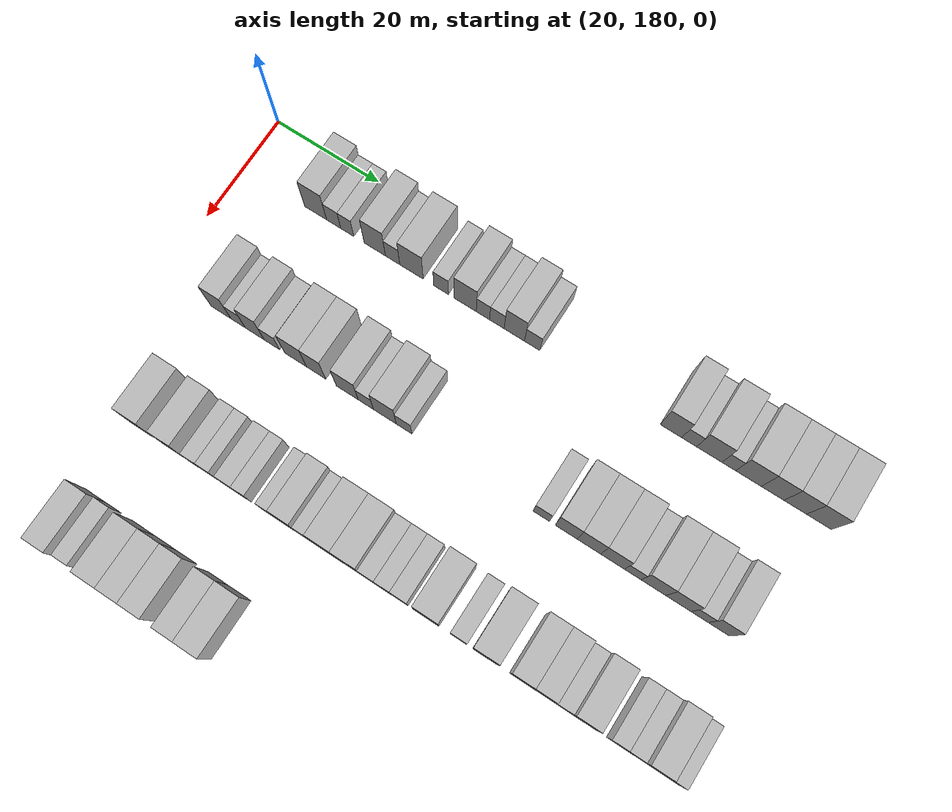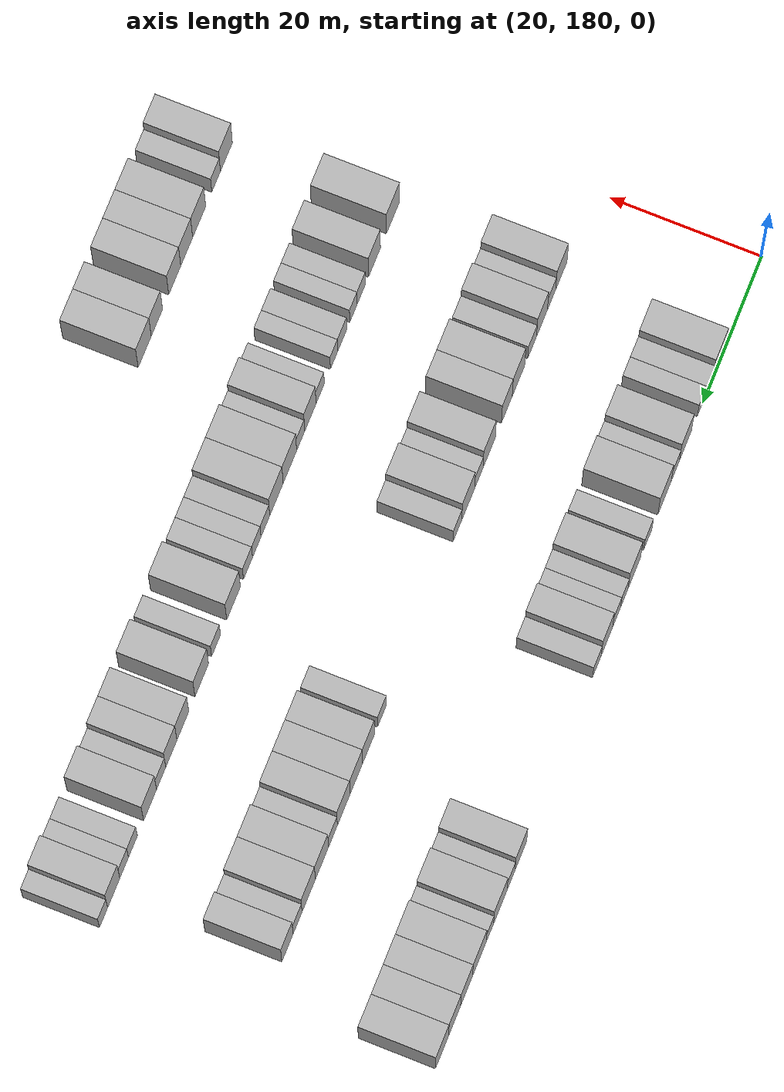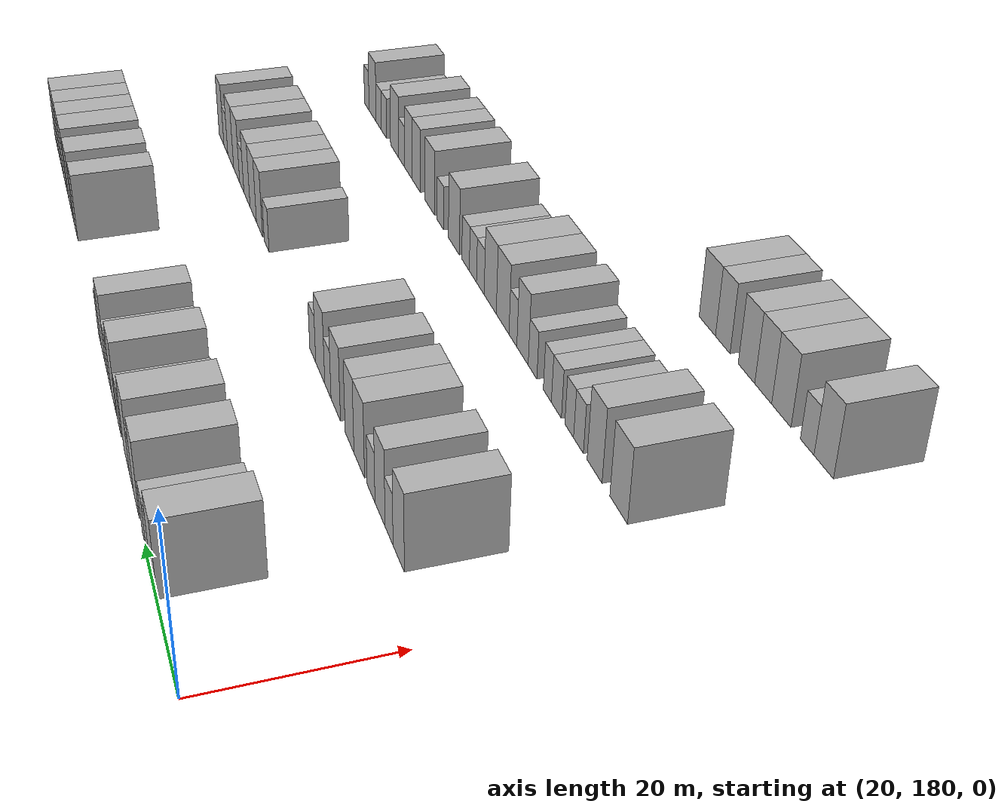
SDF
<sdf version="1.6">
 <world name="default">
  <model name="building_142">
   <static>1</static>
   <pose>25.0000 194.4342 0 0.000000 0.000000 0.000000</pose>
   <link name="link">
    <pose>0 0 4.50 0 0 0</pose>
    <collision name="collision"><geometry><box><size>10.0000 4.2887 9.0000</size></box></geometry></collision>
    <visual name="visual">
     <cast_shadows>0</cast_shadows>
     <geometry><box><size>10.0000 4.2887 9.0000</size></box></geometry>
     <material>
      <script>
       <uri>model://HANNAS_wall/materials/scripts</uri>
       <uri>model://HANNAS_wall/materials/textures</uri>
       <name>vrc/HANNAS_wall</name>
      </script>
     </material>
    </visual>
   </link>
  </model>
  <model name="building_143">
   <static>1</static>
   <pose>25.0000 197.9572 0 0.000000 0.000000 0.000000</pose>
   <link name="link">
    <pose>0 0 3.00 0 0 0</pose>
    <collision name="collision"><geometry><box><size>10.0000 2.7574 6.0000</size></box></geometry></collision>
    <visual name="visual">
     <cast_shadows>0</cast_shadows>
     <geometry><box><size>10.0000 2.7574 6.0000</size></box></geometry>
     <material>
      <script>
       <uri>model://HANNAS_wall/materials/scripts</uri>
       <uri>model://HANNAS_wall/materials/textures</uri>
       <name>vrc/HANNAS_wall</name>
      </script>
     </material>
    </visual>
   </link>
  </model>
  <model name="building_144">
   <static>1</static>
   <pose>25.0000 200.6099 0 0.000000 0.000000 0.000000</pose>
   <link name="link">
    <pose>0 0 3.00 0 0 0</pose>
    <collision name="collision"><geometry><box><size>10.0000 2.5479 6.0000</size></box></geometry></collision>
    <visual name="visual">
     <cast_shadows>0</cast_shadows>
     <geometry><box><size>10.0000 2.5479 6.0000</size></box></geometry>
     <material>
      <script>
       <uri>model://HANNAS_wall/materials/scripts</uri>
       <uri>model://HANNAS_wall/materials/textures</uri>
       <name>vrc/HANNAS_wall</name>
      </script>
     </material>
    </visual>
   </link>
  </model>
  <model name="building_145">
   <static>1</static>
   <pose>25.0000 205.9290 0 0.000000 0.000000 0.000000</pose>
   <link name="link">
    <pose>0 0 4.50 0 0 0</pose>
    <collision name="collision"><geometry><box><size>10.0000 4.0903 9.0000</size></box></geometry></collision>
    <visual name="visual">
     <cast_shadows>0</cast_shadows>
     <geometry><box><size>10.0000 4.0903 9.0000</size></box></geometry>
     <material>
      <script>
       <uri>model://HANNAS_wall/materials/scripts</uri>
       <uri>model://HANNAS_wall/materials/textures</uri>
       <name>vrc/HANNAS_wall</name>
      </script>
     </material>
    </visual>
   </link>
  </model>
  <model name="building_146">
   <static>1</static>
   <pose>25.0000 209.3490 0 0.000000 0.000000 0.000000</pose>
   <link name="link">
    <pose>0 0 3.00 0 0 0</pose>
    <collision name="collision"><geometry><box><size>10.0000 2.7497 6.0000</size></box></geometry></collision>
    <visual name="visual">
     <cast_shadows>0</cast_shadows>
     <geometry><box><size>10.0000 2.7497 6.0000</size></box></geometry>
     <material>
      <script>
       <uri>model://HANNAS_wall/materials/scripts</uri>
       <uri>model://HANNAS_wall/materials/textures</uri>
       <name>vrc/HANNAS_wall</name>
      </script>
     </material>
    </visual>
   </link>
  </model>
  <model name="building_147">
   <static>1</static>
   <pose>25.0000 212.9604 0 0.000000 0.000000 0.000000</pose>
   <link name="link">
    <pose>0 0 4.50 0 0 0</pose>
    <collision name="collision"><geometry><box><size>10.0000 4.4733 9.0000</size></box></geometry></collision>
    <visual name="visual">
     <cast_shadows>0</cast_shadows>
     <geometry><box><size>10.0000 4.4733 9.0000</size></box></geometry>
     <material>
      <script>
       <uri>model://HANNAS_wall/materials/scripts</uri>
       <uri>model://HANNAS_wall/materials/textures</uri>
       <name>vrc/HANNAS_wall</name>
      </script>
     </material>
    </visual>
   </link>
  </model>
  <model name="building_148">
   <static>1</static>
   <pose>25.0000 218.5999 0 0.000000 0.000000 0.000000</pose>
   <link name="link">
    <pose>0 0 3.00 0 0 0</pose>
    <collision name="collision"><geometry><box><size>10.0000 2.8057 6.0000</size></box></geometry></collision>
    <visual name="visual">
     <cast_shadows>0</cast_shadows>
     <geometry><box><size>10.0000 2.8057 6.0000</size></box></geometry>
     <material>
      <script>
       <uri>model://HANNAS_wall/materials/scripts</uri>
       <uri>model://HANNAS_wall/materials/textures</uri>
       <name>vrc/HANNAS_wall</name>
      </script>
     </material>
    </visual>
   </link>
  </model>
  <model name="building_149">
   <static>1</static>
   <pose>25.0000 223.1088 0 0.000000 0.000000 0.000000</pose>
   <link name="link">
    <pose>0 0 4.50 0 0 0</pose>
    <collision name="collision"><geometry><box><size>10.0000 4.2120 9.0000</size></box></geometry></collision>
    <visual name="visual">
     <cast_shadows>0</cast_shadows>
     <geometry><box><size>10.0000 4.2120 9.0000</size></box></geometry>
     <material>
      <script>
       <uri>model://HANNAS_wall/materials/scripts</uri>
       <uri>model://HANNAS_wall/materials/textures</uri>
       <name>vrc/HANNAS_wall</name>
      </script>
     </material>
    </visual>
   </link>
  </model>
  <model name="building_150">
   <static>1</static>
   <pose>25.0000 226.4575 0 0.000000 0.000000 0.000000</pose>
   <link name="link">
    <pose>0 0 3.00 0 0 0</pose>
    <collision name="collision"><geometry><box><size>10.0000 2.4855 6.0000</size></box></geometry></collision>
    <visual name="visual">
     <cast_shadows>0</cast_shadows>
     <geometry><box><size>10.0000 2.4855 6.0000</size></box></geometry>
     <material>
      <script>
       <uri>model://HANNAS_wall/materials/scripts</uri>
       <uri>model://HANNAS_wall/materials/textures</uri>
       <name>vrc/HANNAS_wall</name>
      </script>
     </material>
    </visual>
   </link>
  </model>
  <model name="building_151">
   <static>1</static>
   <pose>25.0000 229.0565 0 0.000000 0.000000 0.000000</pose>
   <link name="link">
    <pose>0 0 3.00 0 0 0</pose>
    <collision name="collision"><geometry><box><size>10.0000 2.7127 6.0000</size></box></geometry></collision>
    <visual name="visual">
     <cast_shadows>0</cast_shadows>
     <geometry><box><size>10.0000 2.7127 6.0000</size></box></geometry>
     <material>
      <script>
       <uri>model://HANNAS_wall/materials/scripts</uri>
       <uri>model://HANNAS_wall/materials/textures</uri>
       <name>vrc/HANNAS_wall</name>
      </script>
     </material>
    </visual>
   </link>
  </model>
  <model name="building_152">
   <static>1</static>
   <pose>25.0000 232.3058 0 0.000000 0.000000 0.000000</pose>
   <link name="link">
    <pose>0 0 4.50 0 0 0</pose>
    <collision name="collision"><geometry><box><size>10.0000 3.7859 9.0000</size></box></geometry></collision>
    <visual name="visual">
     <cast_shadows>0</cast_shadows>
     <geometry><box><size>10.0000 3.7859 9.0000</size></box></geometry>
     <material>
      <script>
       <uri>model://HANNAS_wall/materials/scripts</uri>
       <uri>model://HANNAS_wall/materials/textures</uri>
       <name>vrc/HANNAS_wall</name>
      </script>
     </material>
    </visual>
   </link>
  </model>
  <model name="building_153">
   <static>1</static>
   <pose>25.0000 235.6213 0 0.000000 0.000000 0.000000</pose>
   <link name="link">
    <pose>0 0 3.00 0 0 0</pose>
    <collision name="collision"><geometry><box><size>10.0000 2.8450 6.0000</size></box></geometry></collision>
    <visual name="visual">
     <cast_shadows>0</cast_shadows>
     <geometry><box><size>10.0000 2.8450 6.0000</size></box></geometry>
     <material>
      <script>
       <uri>model://HANNAS_wall/materials/scripts</uri>
       <uri>model://HANNAS_wall/materials/textures</uri>
       <name>vrc/HANNAS_wall</name>
      </script>
     </material>
    </visual>
   </link>
  </model>
  <model name="building_154">
   <static>1</static>
   <pose>25.0000 260.7895 0 0.000000 0.000000 0.000000</pose>
   <link name="link">
    <pose>0 0 4.50 0 0 0</pose>
    <collision name="collision"><geometry><box><size>10.0000 3.8305 9.0000</size></box></geometry></collision>
    <visual name="visual">
     <cast_shadows>0</cast_shadows>
     <geometry><box><size>10.0000 3.8305 9.0000</size></box></geometry>
     <material>
      <script>
       <uri>model://HANNAS_wall/materials/scripts</uri>
       <uri>model://HANNAS_wall/materials/textures</uri>
       <name>vrc/HANNAS_wall</name>
      </script>
     </material>
    </visual>
   </link>
  </model>
  <model name="building_155">
   <static>1</static>
   <pose>25.0000 264.0180 0 0.000000 0.000000 0.000000</pose>
   <link name="link">
    <pose>0 0 3.00 0 0 0</pose>
    <collision name="collision"><geometry><box><size>10.0000 2.6265 6.0000</size></box></geometry></collision>
    <visual name="visual">
     <cast_shadows>0</cast_shadows>
     <geometry><box><size>10.0000 2.6265 6.0000</size></box></geometry>
     <material>
      <script>
       <uri>model://HANNAS_wall/materials/scripts</uri>
       <uri>model://HANNAS_wall/materials/textures</uri>
       <name>vrc/HANNAS_wall</name>
      </script>
     </material>
    </visual>
   </link>
  </model>
  <model name="building_156">
   <static>1</static>
   <pose>25.0000 267.5448 0 0.000000 0.000000 0.000000</pose>
   <link name="link">
    <pose>0 0 4.50 0 0 0</pose>
    <collision name="collision"><geometry><box><size>10.0000 4.4271 9.0000</size></box></geometry></collision>
    <visual name="visual">
     <cast_shadows>0</cast_shadows>
     <geometry><box><size>10.0000 4.4271 9.0000</size></box></geometry>
     <material>
      <script>
       <uri>model://HANNAS_wall/materials/scripts</uri>
       <uri>model://HANNAS_wall/materials/textures</uri>
       <name>vrc/HANNAS_wall</name>
      </script>
     </material>
    </visual>
   </link>
  </model>
  <model name="building_157">
   <static>1</static>
   <pose>25.0000 270.9626 0 0.000000 0.000000 0.000000</pose>
   <link name="link">
    <pose>0 0 3.00 0 0 0</pose>
    <collision name="collision"><geometry><box><size>10.0000 2.4084 6.0000</size></box></geometry></collision>
    <visual name="visual">
     <cast_shadows>0</cast_shadows>
     <geometry><box><size>10.0000 2.4084 6.0000</size></box></geometry>
     <material>
      <script>
       <uri>model://HANNAS_wall/materials/scripts</uri>
       <uri>model://HANNAS_wall/materials/textures</uri>
       <name>vrc/HANNAS_wall</name>
      </script>
     </material>
    </visual>
   </link>
  </model>
  <model name="building_158">
   <static>1</static>
   <pose>25.0000 274.3946 0 0.000000 0.000000 0.000000</pose>
   <link name="link">
    <pose>0 0 4.50 0 0 0</pose>
    <collision name="collision"><geometry><box><size>10.0000 4.4556 9.0000</size></box></geometry></collision>
    <visual name="visual">
     <cast_shadows>0</cast_shadows>
     <geometry><box><size>10.0000 4.4556 9.0000</size></box></geometry>
     <material>
      <script>
       <uri>model://HANNAS_wall/materials/scripts</uri>
       <uri>model://HANNAS_wall/materials/textures</uri>
       <name>vrc/HANNAS_wall</name>
      </script>
     </material>
    </visual>
   </link>
  </model>
  <model name="building_159">
   <static>1</static>
   <pose>25.0000 278.5839 0 0.000000 0.000000 0.000000</pose>
   <link name="link">
    <pose>0 0 4.50 0 0 0</pose>
    <collision name="collision"><geometry><box><size>10.0000 3.9231 9.0000</size></box></geometry></collision>
    <visual name="visual">
     <cast_shadows>0</cast_shadows>
     <geometry><box><size>10.0000 3.9231 9.0000</size></box></geometry>
     <material>
      <script>
       <uri>model://HANNAS_wall/materials/scripts</uri>
       <uri>model://HANNAS_wall/materials/textures</uri>
       <name>vrc/HANNAS_wall</name>
      </script>
     </material>
    </visual>
   </link>
  </model>
  <model name="building_160">
   <static>1</static>
   <pose>25.0000 282.4805 0 0.000000 0.000000 0.000000</pose>
   <link name="link">
    <pose>0 0 4.50 0 0 0</pose>
    <collision name="collision"><geometry><box><size>10.0000 3.8700 9.0000</size></box></geometry></collision>
    <visual name="visual">
     <cast_shadows>0</cast_shadows>
     <geometry><box><size>10.0000 3.8700 9.0000</size></box></geometry>
     <material>
      <script>
       <uri>model://HANNAS_wall/materials/scripts</uri>
       <uri>model://HANNAS_wall/materials/textures</uri>
       <name>vrc/HANNAS_wall</name>
      </script>
     </material>
    </visual>
   </link>
  </model>
  <model name="building_161">
   <static>1</static>
   <pose>25.0000 286.5533 0 0.000000 0.000000 0.000000</pose>
   <link name="link">
    <pose>0 0 4.50 0 0 0</pose>
    <collision name="collision"><geometry><box><size>10.0000 4.2758 9.0000</size></box></geometry></collision>
    <visual name="visual">
     <cast_shadows>0</cast_shadows>
     <geometry><box><size>10.0000 4.2758 9.0000</size></box></geometry>
     <material>
      <script>
       <uri>model://HANNAS_wall/materials/scripts</uri>
       <uri>model://HANNAS_wall/materials/textures</uri>
       <name>vrc/HANNAS_wall</name>
      </script>
     </material>
    </visual>
   </link>
  </model>
  <model name="building_330">
   <static>1</static>
   <pose>47.0000 191.5045 0 0.000000 0.000000 0.000000</pose>
   <link name="link">
    <pose>0 0 4.50 0 0 0</pose>
    <collision name="collision"><geometry><box><size>10.0000 3.8035 9.0000</size></box></geometry></collision>
    <visual name="visual">
     <cast_shadows>0</cast_shadows>
     <geometry><box><size>10.0000 3.8035 9.0000</size></box></geometry>
     <material>
      <script>
       <uri>model://HANNAS_wall/materials/scripts</uri>
       <uri>model://HANNAS_wall/materials/textures</uri>
       <name>vrc/HANNAS_wall</name>
      </script>
     </material>
    </visual>
   </link>
  </model>
  <model name="building_331">
   <static>1</static>
   <pose>47.0000 194.8027 0 0.000000 0.000000 0.000000</pose>
   <link name="link">
    <pose>0 0 3.00 0 0 0</pose>
    <collision name="collision"><geometry><box><size>10.0000 2.7929 6.0000</size></box></geometry></collision>
    <visual name="visual">
     <cast_shadows>0</cast_shadows>
     <geometry><box><size>10.0000 2.7929 6.0000</size></box></geometry>
     <material>
      <script>
       <uri>model://HANNAS_wall/materials/scripts</uri>
       <uri>model://HANNAS_wall/materials/textures</uri>
       <name>vrc/HANNAS_wall</name>
      </script>
     </material>
    </visual>
   </link>
  </model>
  <model name="building_332">
   <static>1</static>
   <pose>47.0000 198.0237 0 0.000000 0.000000 0.000000</pose>
   <link name="link">
    <pose>0 0 4.50 0 0 0</pose>
    <collision name="collision"><geometry><box><size>10.0000 3.6490 9.0000</size></box></geometry></collision>
    <visual name="visual">
     <cast_shadows>0</cast_shadows>
     <geometry><box><size>10.0000 3.6490 9.0000</size></box></geometry>
     <material>
      <script>
       <uri>model://HANNAS_wall/materials/scripts</uri>
       <uri>model://HANNAS_wall/materials/textures</uri>
       <name>vrc/HANNAS_wall</name>
      </script>
     </material>
    </visual>
   </link>
  </model>
  <model name="building_333">
   <static>1</static>
   <pose>47.0000 201.3187 0 0.000000 0.000000 0.000000</pose>
   <link name="link">
    <pose>0 0 3.00 0 0 0</pose>
    <collision name="collision"><geometry><box><size>10.0000 2.9411 6.0000</size></box></geometry></collision>
    <visual name="visual">
     <cast_shadows>0</cast_shadows>
     <geometry><box><size>10.0000 2.9411 6.0000</size></box></geometry>
     <material>
      <script>
       <uri>model://HANNAS_wall/materials/scripts</uri>
       <uri>model://HANNAS_wall/materials/textures</uri>
       <name>vrc/HANNAS_wall</name>
      </script>
     </material>
    </visual>
   </link>
  </model>
  <model name="building_334">
   <static>1</static>
   <pose>47.0000 205.8698 0 0.000000 0.000000 0.000000</pose>
   <link name="link">
    <pose>0 0 4.50 0 0 0</pose>
    <collision name="collision"><geometry><box><size>10.0000 4.1611 9.0000</size></box></geometry></collision>
    <visual name="visual">
     <cast_shadows>0</cast_shadows>
     <geometry><box><size>10.0000 4.1611 9.0000</size></box></geometry>
     <material>
      <script>
       <uri>model://HANNAS_wall/materials/scripts</uri>
       <uri>model://HANNAS_wall/materials/textures</uri>
       <name>vrc/HANNAS_wall</name>
      </script>
     </material>
    </visual>
   </link>
  </model>
  <model name="building_335">
   <static>1</static>
   <pose>47.0000 209.7536 0 0.000000 0.000000 0.000000</pose>
   <link name="link">
    <pose>0 0 4.50 0 0 0</pose>
    <collision name="collision"><geometry><box><size>10.0000 3.6065 9.0000</size></box></geometry></collision>
    <visual name="visual">
     <cast_shadows>0</cast_shadows>
     <geometry><box><size>10.0000 3.6065 9.0000</size></box></geometry>
     <material>
      <script>
       <uri>model://HANNAS_wall/materials/scripts</uri>
       <uri>model://HANNAS_wall/materials/textures</uri>
       <name>vrc/HANNAS_wall</name>
      </script>
     </material>
    </visual>
   </link>
  </model>
  <model name="building_336">
   <static>1</static>
   <pose>47.0000 215.6096 0 0.000000 0.000000 0.000000</pose>
   <link name="link">
    <pose>0 0 4.50 0 0 0</pose>
    <collision name="collision"><geometry><box><size>10.0000 4.1054 9.0000</size></box></geometry></collision>
    <visual name="visual">
     <cast_shadows>0</cast_shadows>
     <geometry><box><size>10.0000 4.1054 9.0000</size></box></geometry>
     <material>
      <script>
       <uri>model://HANNAS_wall/materials/scripts</uri>
       <uri>model://HANNAS_wall/materials/textures</uri>
       <name>vrc/HANNAS_wall</name>
      </script>
     </material>
    </visual>
   </link>
  </model>
  <model name="building_337">
   <static>1</static>
   <pose>47.0000 219.0672 0 0.000000 0.000000 0.000000</pose>
   <link name="link">
    <pose>0 0 3.00 0 0 0</pose>
    <collision name="collision"><geometry><box><size>10.0000 2.8098 6.0000</size></box></geometry></collision>
    <visual name="visual">
     <cast_shadows>0</cast_shadows>
     <geometry><box><size>10.0000 2.8098 6.0000</size></box></geometry>
     <material>
      <script>
       <uri>model://HANNAS_wall/materials/scripts</uri>
       <uri>model://HANNAS_wall/materials/textures</uri>
       <name>vrc/HANNAS_wall</name>
      </script>
     </material>
    </visual>
   </link>
  </model>
  <model name="building_338">
   <static>1</static>
   <pose>47.0000 222.5880 0 0.000000 0.000000 0.000000</pose>
   <link name="link">
    <pose>0 0 4.50 0 0 0</pose>
    <collision name="collision"><geometry><box><size>10.0000 4.2319 9.0000</size></box></geometry></collision>
    <visual name="visual">
     <cast_shadows>0</cast_shadows>
     <geometry><box><size>10.0000 4.2319 9.0000</size></box></geometry>
     <material>
      <script>
       <uri>model://HANNAS_wall/materials/scripts</uri>
       <uri>model://HANNAS_wall/materials/textures</uri>
       <name>vrc/HANNAS_wall</name>
      </script>
     </material>
    </visual>
   </link>
  </model>
  <model name="building_339">
   <static>1</static>
   <pose>47.0000 226.1510 0 0.000000 0.000000 0.000000</pose>
   <link name="link">
    <pose>0 0 3.00 0 0 0</pose>
    <collision name="collision"><geometry><box><size>10.0000 2.8941 6.0000</size></box></geometry></collision>
    <visual name="visual">
     <cast_shadows>0</cast_shadows>
     <geometry><box><size>10.0000 2.8941 6.0000</size></box></geometry>
     <material>
      <script>
       <uri>model://HANNAS_wall/materials/scripts</uri>
       <uri>model://HANNAS_wall/materials/textures</uri>
       <name>vrc/HANNAS_wall</name>
      </script>
     </material>
    </visual>
   </link>
  </model>
  <model name="building_340">
   <static>1</static>
   <pose>47.0000 250.9813 0 0.000000 0.000000 0.000000</pose>
   <link name="link">
    <pose>0 0 3.00 0 0 0</pose>
    <collision name="collision"><geometry><box><size>10.0000 2.9222 6.0000</size></box></geometry></collision>
    <visual name="visual">
     <cast_shadows>0</cast_shadows>
     <geometry><box><size>10.0000 2.9222 6.0000</size></box></geometry>
     <material>
      <script>
       <uri>model://HANNAS_wall/materials/scripts</uri>
       <uri>model://HANNAS_wall/materials/textures</uri>
       <name>vrc/HANNAS_wall</name>
      </script>
     </material>
    </visual>
   </link>
  </model>
  <model name="building_341">
   <static>1</static>
   <pose>47.0000 255.3674 0 0.000000 0.000000 0.000000</pose>
   <link name="link">
    <pose>0 0 4.50 0 0 0</pose>
    <collision name="collision"><geometry><box><size>10.0000 3.8501 9.0000</size></box></geometry></collision>
    <visual name="visual">
     <cast_shadows>0</cast_shadows>
     <geometry><box><size>10.0000 3.8501 9.0000</size></box></geometry>
     <material>
      <script>
       <uri>model://HANNAS_wall/materials/scripts</uri>
       <uri>model://HANNAS_wall/materials/textures</uri>
       <name>vrc/HANNAS_wall</name>
      </script>
     </material>
    </visual>
   </link>
  </model>
  <model name="building_342">
   <static>1</static>
   <pose>47.0000 259.3530 0 0.000000 0.000000 0.000000</pose>
   <link name="link">
    <pose>0 0 4.50 0 0 0</pose>
    <collision name="collision"><geometry><box><size>10.0000 4.1212 9.0000</size></box></geometry></collision>
    <visual name="visual">
     <cast_shadows>0</cast_shadows>
     <geometry><box><size>10.0000 4.1212 9.0000</size></box></geometry>
     <material>
      <script>
       <uri>model://HANNAS_wall/materials/scripts</uri>
       <uri>model://HANNAS_wall/materials/textures</uri>
       <name>vrc/HANNAS_wall</name>
      </script>
     </material>
    </visual>
   </link>
  </model>
  <model name="building_343">
   <static>1</static>
   <pose>47.0000 263.4711 0 0.000000 0.000000 0.000000</pose>
   <link name="link">
    <pose>0 0 4.50 0 0 0</pose>
    <collision name="collision"><geometry><box><size>10.0000 4.1149 9.0000</size></box></geometry></collision>
    <visual name="visual">
     <cast_shadows>0</cast_shadows>
     <geometry><box><size>10.0000 4.1149 9.0000</size></box></geometry>
     <material>
      <script>
       <uri>model://HANNAS_wall/materials/scripts</uri>
       <uri>model://HANNAS_wall/materials/textures</uri>
       <name>vrc/HANNAS_wall</name>
      </script>
     </material>
    </visual>
   </link>
  </model>
  <model name="building_344">
   <static>1</static>
   <pose>47.0000 266.9787 0 0.000000 0.000000 0.000000</pose>
   <link name="link">
    <pose>0 0 3.00 0 0 0</pose>
    <collision name="collision"><geometry><box><size>10.0000 2.9005 6.0000</size></box></geometry></collision>
    <visual name="visual">
     <cast_shadows>0</cast_shadows>
     <geometry><box><size>10.0000 2.9005 6.0000</size></box></geometry>
     <material>
      <script>
       <uri>model://HANNAS_wall/materials/scripts</uri>
       <uri>model://HANNAS_wall/materials/textures</uri>
       <name>vrc/HANNAS_wall</name>
      </script>
     </material>
    </visual>
   </link>
  </model>
  <model name="building_345">
   <static>1</static>
   <pose>47.0000 270.5539 0 0.000000 0.000000 0.000000</pose>
   <link name="link">
    <pose>0 0 4.50 0 0 0</pose>
    <collision name="collision"><geometry><box><size>10.0000 4.2500 9.0000</size></box></geometry></collision>
    <visual name="visual">
     <cast_shadows>0</cast_shadows>
     <geometry><box><size>10.0000 4.2500 9.0000</size></box></geometry>
     <material>
      <script>
       <uri>model://HANNAS_wall/materials/scripts</uri>
       <uri>model://HANNAS_wall/materials/textures</uri>
       <name>vrc/HANNAS_wall</name>
      </script>
     </material>
    </visual>
   </link>
  </model>
  <model name="building_346">
   <static>1</static>
   <pose>47.0000 274.8305 0 0.000000 0.000000 0.000000</pose>
   <link name="link">
    <pose>0 0 4.50 0 0 0</pose>
    <collision name="collision"><geometry><box><size>10.0000 4.3032 9.0000</size></box></geometry></collision>
    <visual name="visual">
     <cast_shadows>0</cast_shadows>
     <geometry><box><size>10.0000 4.3032 9.0000</size></box></geometry>
     <material>
      <script>
       <uri>model://HANNAS_wall/materials/scripts</uri>
       <uri>model://HANNAS_wall/materials/textures</uri>
       <name>vrc/HANNAS_wall</name>
      </script>
     </material>
    </visual>
   </link>
  </model>
  <model name="building_347">
   <static>1</static>
   <pose>47.0000 278.4367 0 0.000000 0.000000 0.000000</pose>
   <link name="link">
    <pose>0 0 3.00 0 0 0</pose>
    <collision name="collision"><geometry><box><size>10.0000 2.9091 6.0000</size></box></geometry></collision>
    <visual name="visual">
     <cast_shadows>0</cast_shadows>
     <geometry><box><size>10.0000 2.9091 6.0000</size></box></geometry>
     <material>
      <script>
       <uri>model://HANNAS_wall/materials/scripts</uri>
       <uri>model://HANNAS_wall/materials/textures</uri>
       <name>vrc/HANNAS_wall</name>
      </script>
     </material>
    </visual>
   </link>
  </model>
  <model name="building_348">
   <static>1</static>
   <pose>47.0000 281.6938 0 0.000000 0.000000 0.000000</pose>
   <link name="link">
    <pose>0 0 4.50 0 0 0</pose>
    <collision name="collision"><geometry><box><size>10.0000 3.6052 9.0000</size></box></geometry></collision>
    <visual name="visual">
     <cast_shadows>0</cast_shadows>
     <geometry><box><size>10.0000 3.6052 9.0000</size></box></geometry>
     <material>
      <script>
       <uri>model://HANNAS_wall/materials/scripts</uri>
       <uri>model://HANNAS_wall/materials/textures</uri>
       <name>vrc/HANNAS_wall</name>
      </script>
     </material>
    </visual>
   </link>
  </model>
  <model name="building_516">
   <static>1</static>
   <pose>69.0000 192.2705 0 0.000000 0.000000 0.000000</pose>
   <link name="link">
    <pose>0 0 4.50 0 0 0</pose>
    <collision name="collision"><geometry><box><size>10.0000 4.3944 9.0000</size></box></geometry></collision>
    <visual name="visual">
     <cast_shadows>0</cast_shadows>
     <geometry><box><size>10.0000 4.3944 9.0000</size></box></geometry>
     <material>
      <script>
       <uri>model://HANNAS_wall/materials/scripts</uri>
       <uri>model://HANNAS_wall/materials/textures</uri>
       <name>vrc/HANNAS_wall</name>
      </script>
     </material>
    </visual>
   </link>
  </model>
  <model name="building_517">
   <static>1</static>
   <pose>69.0000 198.4491 0 0.000000 0.000000 0.000000</pose>
   <link name="link">
    <pose>0 0 4.50 0 0 0</pose>
    <collision name="collision"><geometry><box><size>10.0000 3.9629 9.0000</size></box></geometry></collision>
    <visual name="visual">
     <cast_shadows>0</cast_shadows>
     <geometry><box><size>10.0000 3.9629 9.0000</size></box></geometry>
     <material>
      <script>
       <uri>model://HANNAS_wall/materials/scripts</uri>
       <uri>model://HANNAS_wall/materials/textures</uri>
       <name>vrc/HANNAS_wall</name>
      </script>
     </material>
    </visual>
   </link>
  </model>
  <model name="building_518">
   <static>1</static>
   <pose>69.0000 202.7853 0 0.000000 0.000000 0.000000</pose>
   <link name="link">
    <pose>0 0 3.00 0 0 0</pose>
    <collision name="collision"><geometry><box><size>10.0000 2.7095 6.0000</size></box></geometry></collision>
    <visual name="visual">
     <cast_shadows>0</cast_shadows>
     <geometry><box><size>10.0000 2.7095 6.0000</size></box></geometry>
     <material>
      <script>
       <uri>model://HANNAS_wall/materials/scripts</uri>
       <uri>model://HANNAS_wall/materials/textures</uri>
       <name>vrc/HANNAS_wall</name>
      </script>
     </material>
    </visual>
   </link>
  </model>
  <model name="building_519">
   <static>1</static>
   <pose>69.0000 205.3776 0 0.000000 0.000000 0.000000</pose>
   <link name="link">
    <pose>0 0 3.00 0 0 0</pose>
    <collision name="collision"><geometry><box><size>10.0000 2.4753 6.0000</size></box></geometry></collision>
    <visual name="visual">
     <cast_shadows>0</cast_shadows>
     <geometry><box><size>10.0000 2.4753 6.0000</size></box></geometry>
     <material>
      <script>
       <uri>model://HANNAS_wall/materials/scripts</uri>
       <uri>model://HANNAS_wall/materials/textures</uri>
       <name>vrc/HANNAS_wall</name>
      </script>
     </material>
    </visual>
   </link>
  </model>
  <model name="building_520">
   <static>1</static>
   <pose>69.0000 209.0927 0 0.000000 0.000000 0.000000</pose>
   <link name="link">
    <pose>0 0 3.00 0 0 0</pose>
    <collision name="collision"><geometry><box><size>10.0000 2.9548 6.0000</size></box></geometry></collision>
    <visual name="visual">
     <cast_shadows>0</cast_shadows>
     <geometry><box><size>10.0000 2.9548 6.0000</size></box></geometry>
     <material>
      <script>
       <uri>model://HANNAS_wall/materials/scripts</uri>
       <uri>model://HANNAS_wall/materials/textures</uri>
       <name>vrc/HANNAS_wall</name>
      </script>
     </material>
    </visual>
   </link>
  </model>
  <model name="building_521">
   <static>1</static>
   <pose>69.0000 211.7875 0 0.000000 0.000000 0.000000</pose>
   <link name="link">
    <pose>0 0 3.00 0 0 0</pose>
    <collision name="collision"><geometry><box><size>10.0000 2.4348 6.0000</size></box></geometry></collision>
    <visual name="visual">
     <cast_shadows>0</cast_shadows>
     <geometry><box><size>10.0000 2.4348 6.0000</size></box></geometry>
     <material>
      <script>
       <uri>model://HANNAS_wall/materials/scripts</uri>
       <uri>model://HANNAS_wall/materials/textures</uri>
       <name>vrc/HANNAS_wall</name>
      </script>
     </material>
    </visual>
   </link>
  </model>
  <model name="building_522">
   <static>1</static>
   <pose>69.0000 216.3763 0 0.000000 0.000000 0.000000</pose>
   <link name="link">
    <pose>0 0 3.00 0 0 0</pose>
    <collision name="collision"><geometry><box><size>10.0000 2.7429 6.0000</size></box></geometry></collision>
    <visual name="visual">
     <cast_shadows>0</cast_shadows>
     <geometry><box><size>10.0000 2.7429 6.0000</size></box></geometry>
     <material>
      <script>
       <uri>model://HANNAS_wall/materials/scripts</uri>
       <uri>model://HANNAS_wall/materials/textures</uri>
       <name>vrc/HANNAS_wall</name>
      </script>
     </material>
    </visual>
   </link>
  </model>
  <model name="building_523">
   <static>1</static>
   <pose>69.0000 219.6072 0 0.000000 0.000000 0.000000</pose>
   <link name="link">
    <pose>0 0 4.50 0 0 0</pose>
    <collision name="collision"><geometry><box><size>10.0000 3.7189 9.0000</size></box></geometry></collision>
    <visual name="visual">
     <cast_shadows>0</cast_shadows>
     <geometry><box><size>10.0000 3.7189 9.0000</size></box></geometry>
     <material>
      <script>
       <uri>model://HANNAS_wall/materials/scripts</uri>
       <uri>model://HANNAS_wall/materials/textures</uri>
       <name>vrc/HANNAS_wall</name>
      </script>
     </material>
    </visual>
   </link>
  </model>
  <model name="building_524">
   <static>1</static>
   <pose>69.0000 222.7854 0 0.000000 0.000000 0.000000</pose>
   <link name="link">
    <pose>0 0 3.00 0 0 0</pose>
    <collision name="collision"><geometry><box><size>10.0000 2.6375 6.0000</size></box></geometry></collision>
    <visual name="visual">
     <cast_shadows>0</cast_shadows>
     <geometry><box><size>10.0000 2.6375 6.0000</size></box></geometry>
     <material>
      <script>
       <uri>model://HANNAS_wall/materials/scripts</uri>
       <uri>model://HANNAS_wall/materials/textures</uri>
       <name>vrc/HANNAS_wall</name>
      </script>
     </material>
    </visual>
   </link>
  </model>
  <model name="building_525">
   <static>1</static>
   <pose>69.0000 226.3155 0 0.000000 0.000000 0.000000</pose>
   <link name="link">
    <pose>0 0 4.50 0 0 0</pose>
    <collision name="collision"><geometry><box><size>10.0000 4.4226 9.0000</size></box></geometry></collision>
    <visual name="visual">
     <cast_shadows>0</cast_shadows>
     <geometry><box><size>10.0000 4.4226 9.0000</size></box></geometry>
     <material>
      <script>
       <uri>model://HANNAS_wall/materials/scripts</uri>
       <uri>model://HANNAS_wall/materials/textures</uri>
       <name>vrc/HANNAS_wall</name>
      </script>
     </material>
    </visual>
   </link>
  </model>
  <model name="building_526">
   <static>1</static>
   <pose>69.0000 230.7147 0 0.000000 0.000000 0.000000</pose>
   <link name="link">
    <pose>0 0 4.50 0 0 0</pose>
    <collision name="collision"><geometry><box><size>10.0000 4.3759 9.0000</size></box></geometry></collision>
    <visual name="visual">
     <cast_shadows>0</cast_shadows>
     <geometry><box><size>10.0000 4.3759 9.0000</size></box></geometry>
     <material>
      <script>
       <uri>model://HANNAS_wall/materials/scripts</uri>
       <uri>model://HANNAS_wall/materials/textures</uri>
       <name>vrc/HANNAS_wall</name>
      </script>
     </material>
    </visual>
   </link>
  </model>
  <model name="building_527">
   <static>1</static>
   <pose>69.0000 234.3349 0 0.000000 0.000000 0.000000</pose>
   <link name="link">
    <pose>0 0 3.00 0 0 0</pose>
    <collision name="collision"><geometry><box><size>10.0000 2.8646 6.0000</size></box></geometry></collision>
    <visual name="visual">
     <cast_shadows>0</cast_shadows>
     <geometry><box><size>10.0000 2.8646 6.0000</size></box></geometry>
     <material>
      <script>
       <uri>model://HANNAS_wall/materials/scripts</uri>
       <uri>model://HANNAS_wall/materials/textures</uri>
       <name>vrc/HANNAS_wall</name>
      </script>
     </material>
    </visual>
   </link>
  </model>
  <model name="building_528">
   <static>1</static>
   <pose>69.0000 237.1352 0 0.000000 0.000000 0.000000</pose>
   <link name="link">
    <pose>0 0 3.00 0 0 0</pose>
    <collision name="collision"><geometry><box><size>10.0000 2.7358 6.0000</size></box></geometry></collision>
    <visual name="visual">
     <cast_shadows>0</cast_shadows>
     <geometry><box><size>10.0000 2.7358 6.0000</size></box></geometry>
     <material>
      <script>
       <uri>model://HANNAS_wall/materials/scripts</uri>
       <uri>model://HANNAS_wall/materials/textures</uri>
       <name>vrc/HANNAS_wall</name>
      </script>
     </material>
    </visual>
   </link>
  </model>
  <model name="building_529">
   <static>1</static>
   <pose>69.0000 239.9780 0 0.000000 0.000000 0.000000</pose>
   <link name="link">
    <pose>0 0 3.00 0 0 0</pose>
    <collision name="collision"><geometry><box><size>10.0000 2.9500 6.0000</size></box></geometry></collision>
    <visual name="visual">
     <cast_shadows>0</cast_shadows>
     <geometry><box><size>10.0000 2.9500 6.0000</size></box></geometry>
     <material>
      <script>
       <uri>model://HANNAS_wall/materials/scripts</uri>
       <uri>model://HANNAS_wall/materials/textures</uri>
       <name>vrc/HANNAS_wall</name>
      </script>
     </material>
    </visual>
   </link>
  </model>
  <model name="building_530">
   <static>1</static>
   <pose>69.0000 244.6816 0 0.000000 0.000000 0.000000</pose>
   <link name="link">
    <pose>0 0 4.50 0 0 0</pose>
    <collision name="collision"><geometry><box><size>10.0000 4.4571 9.0000</size></box></geometry></collision>
    <visual name="visual">
     <cast_shadows>0</cast_shadows>
     <geometry><box><size>10.0000 4.4571 9.0000</size></box></geometry>
     <material>
      <script>
       <uri>model://HANNAS_wall/materials/scripts</uri>
       <uri>model://HANNAS_wall/materials/textures</uri>
       <name>vrc/HANNAS_wall</name>
      </script>
     </material>
    </visual>
   </link>
  </model>
  <model name="building_531">
   <static>1</static>
   <pose>69.0000 250.3471 0 0.000000 0.000000 0.000000</pose>
   <link name="link">
    <pose>0 0 3.00 0 0 0</pose>
    <collision name="collision"><geometry><box><size>10.0000 2.8741 6.0000</size></box></geometry></collision>
    <visual name="visual">
     <cast_shadows>0</cast_shadows>
     <geometry><box><size>10.0000 2.8741 6.0000</size></box></geometry>
     <material>
      <script>
       <uri>model://HANNAS_wall/materials/scripts</uri>
       <uri>model://HANNAS_wall/materials/textures</uri>
       <name>vrc/HANNAS_wall</name>
      </script>
     </material>
    </visual>
   </link>
  </model>
  <model name="building_532">
   <static>1</static>
   <pose>69.0000 254.9730 0 0.000000 0.000000 0.000000</pose>
   <link name="link">
    <pose>0 0 4.50 0 0 0</pose>
    <collision name="collision"><geometry><box><size>10.0000 4.3777 9.0000</size></box></geometry></collision>
    <visual name="visual">
     <cast_shadows>0</cast_shadows>
     <geometry><box><size>10.0000 4.3777 9.0000</size></box></geometry>
     <material>
      <script>
       <uri>model://HANNAS_wall/materials/scripts</uri>
       <uri>model://HANNAS_wall/materials/textures</uri>
       <name>vrc/HANNAS_wall</name>
      </script>
     </material>
    </visual>
   </link>
  </model>
  <model name="building_533">
   <static>1</static>
   <pose>69.0000 261.0660 0 0.000000 0.000000 0.000000</pose>
   <link name="link">
    <pose>0 0 4.50 0 0 0</pose>
    <collision name="collision"><geometry><box><size>10.0000 3.8082 9.0000</size></box></geometry></collision>
    <visual name="visual">
     <cast_shadows>0</cast_shadows>
     <geometry><box><size>10.0000 3.8082 9.0000</size></box></geometry>
     <material>
      <script>
       <uri>model://HANNAS_wall/materials/scripts</uri>
       <uri>model://HANNAS_wall/materials/textures</uri>
       <name>vrc/HANNAS_wall</name>
      </script>
     </material>
    </visual>
   </link>
  </model>
  <model name="building_534">
   <static>1</static>
   <pose>69.0000 264.7711 0 0.000000 0.000000 0.000000</pose>
   <link name="link">
    <pose>0 0 4.50 0 0 0</pose>
    <collision name="collision"><geometry><box><size>10.0000 3.6020 9.0000</size></box></geometry></collision>
    <visual name="visual">
     <cast_shadows>0</cast_shadows>
     <geometry><box><size>10.0000 3.6020 9.0000</size></box></geometry>
     <material>
      <script>
       <uri>model://HANNAS_wall/materials/scripts</uri>
       <uri>model://HANNAS_wall/materials/textures</uri>
       <name>vrc/HANNAS_wall</name>
      </script>
     </material>
    </visual>
   </link>
  </model>
  <model name="building_535">
   <static>1</static>
   <pose>69.0000 268.0552 0 0.000000 0.000000 0.000000</pose>
   <link name="link">
    <pose>0 0 3.00 0 0 0</pose>
    <collision name="collision"><geometry><box><size>10.0000 2.9663 6.0000</size></box></geometry></collision>
    <visual name="visual">
     <cast_shadows>0</cast_shadows>
     <geometry><box><size>10.0000 2.9663 6.0000</size></box></geometry>
     <material>
      <script>
       <uri>model://HANNAS_wall/materials/scripts</uri>
       <uri>model://HANNAS_wall/materials/textures</uri>
       <name>vrc/HANNAS_wall</name>
      </script>
     </material>
    </visual>
   </link>
  </model>
  <model name="building_536">
   <static>1</static>
   <pose>69.0000 271.5997 0 0.000000 0.000000 0.000000</pose>
   <link name="link">
    <pose>0 0 4.50 0 0 0</pose>
    <collision name="collision"><geometry><box><size>10.0000 4.1227 9.0000</size></box></geometry></collision>
    <visual name="visual">
     <cast_shadows>0</cast_shadows>
     <geometry><box><size>10.0000 4.1227 9.0000</size></box></geometry>
     <material>
      <script>
       <uri>model://HANNAS_wall/materials/scripts</uri>
       <uri>model://HANNAS_wall/materials/textures</uri>
       <name>vrc/HANNAS_wall</name>
      </script>
     </material>
    </visual>
   </link>
  </model>
  <model name="building_537">
   <static>1</static>
   <pose>69.0000 277.0917 0 0.000000 0.000000 0.000000</pose>
   <link name="link">
    <pose>0 0 3.00 0 0 0</pose>
    <collision name="collision"><geometry><box><size>10.0000 2.8612 6.0000</size></box></geometry></collision>
    <visual name="visual">
     <cast_shadows>0</cast_shadows>
     <geometry><box><size>10.0000 2.8612 6.0000</size></box></geometry>
     <material>
      <script>
       <uri>model://HANNAS_wall/materials/scripts</uri>
       <uri>model://HANNAS_wall/materials/textures</uri>
       <name>vrc/HANNAS_wall</name>
      </script>
     </material>
    </visual>
   </link>
  </model>
  <model name="building_538">
   <static>1</static>
   <pose>69.0000 279.8999 0 0.000000 0.000000 0.000000</pose>
   <link name="link">
    <pose>0 0 3.00 0 0 0</pose>
    <collision name="collision"><geometry><box><size>10.0000 2.7553 6.0000</size></box></geometry></collision>
    <visual name="visual">
     <cast_shadows>0</cast_shadows>
     <geometry><box><size>10.0000 2.7553 6.0000</size></box></geometry>
     <material>
      <script>
       <uri>model://HANNAS_wall/materials/scripts</uri>
       <uri>model://HANNAS_wall/materials/textures</uri>
       <name>vrc/HANNAS_wall</name>
      </script>
     </material>
    </visual>
   </link>
  </model>
  <model name="building_539">
   <static>1</static>
   <pose>69.0000 283.2259 0 0.000000 0.000000 0.000000</pose>
   <link name="link">
    <pose>0 0 4.50 0 0 0</pose>
    <collision name="collision"><geometry><box><size>10.0000 3.8967 9.0000</size></box></geometry></collision>
    <visual name="visual">
     <cast_shadows>0</cast_shadows>
     <geometry><box><size>10.0000 3.8967 9.0000</size></box></geometry>
     <material>
      <script>
       <uri>model://HANNAS_wall/materials/scripts</uri>
       <uri>model://HANNAS_wall/materials/textures</uri>
       <name>vrc/HANNAS_wall</name>
      </script>
     </material>
    </visual>
   </link>
  </model>
  <model name="building_540">
   <static>1</static>
   <pose>69.0000 286.4716 0 0.000000 0.000000 0.000000</pose>
   <link name="link">
    <pose>0 0 3.00 0 0 0</pose>
    <collision name="collision"><geometry><box><size>10.0000 2.5946 6.0000</size></box></geometry></collision>
    <visual name="visual">
     <cast_shadows>0</cast_shadows>
     <geometry><box><size>10.0000 2.5946 6.0000</size></box></geometry>
     <material>
      <script>
       <uri>model://HANNAS_wall/materials/scripts</uri>
       <uri>model://HANNAS_wall/materials/textures</uri>
       <name>vrc/HANNAS_wall</name>
      </script>
     </material>
    </visual>
   </link>
  </model>
  <model name="building_701">
   <static>1</static>
   <pose>91.0000 192.7153 0 0.000000 0.000000 0.000000</pose>
   <link name="link">
    <pose>0 0 4.50 0 0 0</pose>
    <collision name="collision"><geometry><box><size>10.0000 3.9268 9.0000</size></box></geometry></collision>
    <visual name="visual">
     <cast_shadows>0</cast_shadows>
     <geometry><box><size>10.0000 3.9268 9.0000</size></box></geometry>
     <material>
      <script>
       <uri>model://HANNAS_wall/materials/scripts</uri>
       <uri>model://HANNAS_wall/materials/textures</uri>
       <name>vrc/HANNAS_wall</name>
      </script>
     </material>
    </visual>
   </link>
  </model>
  <model name="building_702">
   <static>1</static>
   <pose>91.0000 196.1010 0 0.000000 0.000000 0.000000</pose>
   <link name="link">
    <pose>0 0 3.00 0 0 0</pose>
    <collision name="collision"><geometry><box><size>10.0000 2.8447 6.0000</size></box></geometry></collision>
    <visual name="visual">
     <cast_shadows>0</cast_shadows>
     <geometry><box><size>10.0000 2.8447 6.0000</size></box></geometry>
     <material>
      <script>
       <uri>model://HANNAS_wall/materials/scripts</uri>
       <uri>model://HANNAS_wall/materials/textures</uri>
       <name>vrc/HANNAS_wall</name>
      </script>
     </material>
    </visual>
   </link>
  </model>
  <model name="building_703">
   <static>1</static>
   <pose>91.0000 201.6551 0 0.000000 0.000000 0.000000</pose>
   <link name="link">
    <pose>0 0 4.50 0 0 0</pose>
    <collision name="collision"><geometry><box><size>10.0000 4.2633 9.0000</size></box></geometry></collision>
    <visual name="visual">
     <cast_shadows>0</cast_shadows>
     <geometry><box><size>10.0000 4.2633 9.0000</size></box></geometry>
     <material>
      <script>
       <uri>model://HANNAS_wall/materials/scripts</uri>
       <uri>model://HANNAS_wall/materials/textures</uri>
       <name>vrc/HANNAS_wall</name>
      </script>
     </material>
    </visual>
   </link>
  </model>
  <model name="building_704">
   <static>1</static>
   <pose>91.0000 205.7324 0 0.000000 0.000000 0.000000</pose>
   <link name="link">
    <pose>0 0 4.50 0 0 0</pose>
    <collision name="collision"><geometry><box><size>10.0000 3.8913 9.0000</size></box></geometry></collision>
    <visual name="visual">
     <cast_shadows>0</cast_shadows>
     <geometry><box><size>10.0000 3.8913 9.0000</size></box></geometry>
     <material>
      <script>
       <uri>model://HANNAS_wall/materials/scripts</uri>
       <uri>model://HANNAS_wall/materials/textures</uri>
       <name>vrc/HANNAS_wall</name>
      </script>
     </material>
    </visual>
   </link>
  </model>
  <model name="building_705">
   <static>1</static>
   <pose>91.0000 209.6476 0 0.000000 0.000000 0.000000</pose>
   <link name="link">
    <pose>0 0 4.50 0 0 0</pose>
    <collision name="collision"><geometry><box><size>10.0000 3.9391 9.0000</size></box></geometry></collision>
    <visual name="visual">
     <cast_shadows>0</cast_shadows>
     <geometry><box><size>10.0000 3.9391 9.0000</size></box></geometry>
     <material>
      <script>
       <uri>model://HANNAS_wall/materials/scripts</uri>
       <uri>model://HANNAS_wall/materials/textures</uri>
       <name>vrc/HANNAS_wall</name>
      </script>
     </material>
    </visual>
   </link>
  </model>
  <model name="building_706">
   <static>1</static>
   <pose>91.0000 215.4561 0 0.000000 0.000000 0.000000</pose>
   <link name="link">
    <pose>0 0 4.50 0 0 0</pose>
    <collision name="collision"><geometry><box><size>10.0000 3.6779 9.0000</size></box></geometry></collision>
    <visual name="visual">
     <cast_shadows>0</cast_shadows>
     <geometry><box><size>10.0000 3.6779 9.0000</size></box></geometry>
     <material>
      <script>
       <uri>model://HANNAS_wall/materials/scripts</uri>
       <uri>model://HANNAS_wall/materials/textures</uri>
       <name>vrc/HANNAS_wall</name>
      </script>
     </material>
    </visual>
   </link>
  </model>
  <model name="building_707">
   <static>1</static>
   <pose>91.0000 219.4216 0 0.000000 0.000000 0.000000</pose>
   <link name="link">
    <pose>0 0 4.50 0 0 0</pose>
    <collision name="collision"><geometry><box><size>10.0000 4.2531 9.0000</size></box></geometry></collision>
    <visual name="visual">
     <cast_shadows>0</cast_shadows>
     <geometry><box><size>10.0000 4.2531 9.0000</size></box></geometry>
     <material>
      <script>
       <uri>model://HANNAS_wall/materials/scripts</uri>
       <uri>model://HANNAS_wall/materials/textures</uri>
       <name>vrc/HANNAS_wall</name>
      </script>
     </material>
    </visual>
   </link>
  </model>
 </world>
</sdf>
